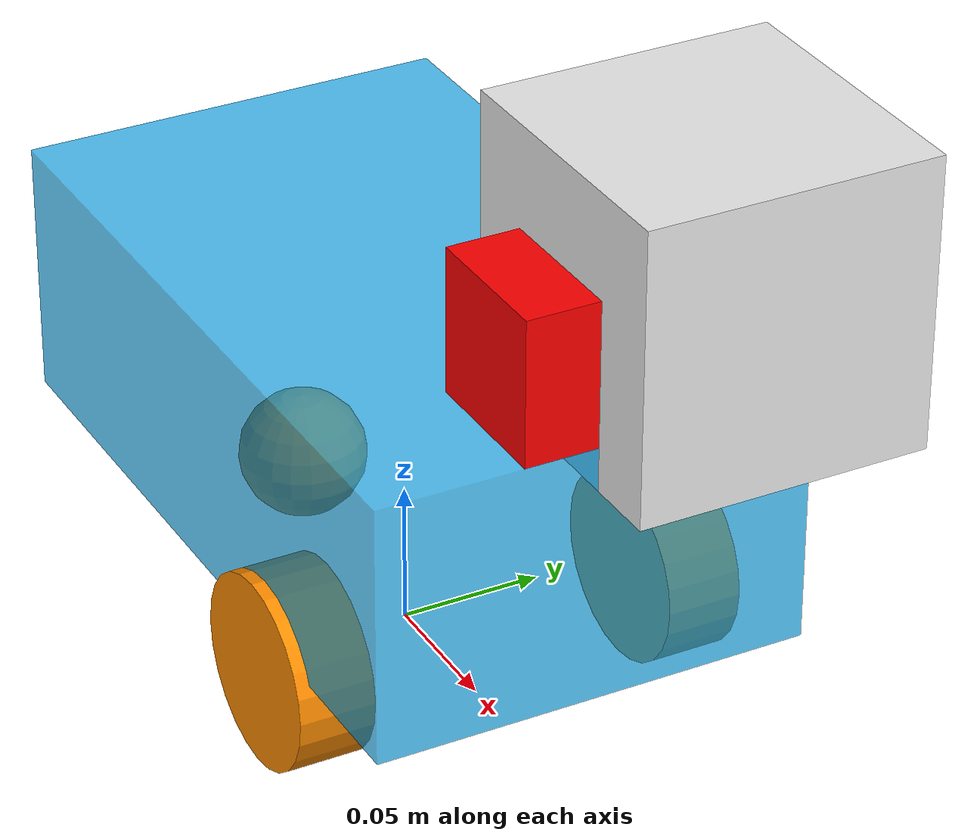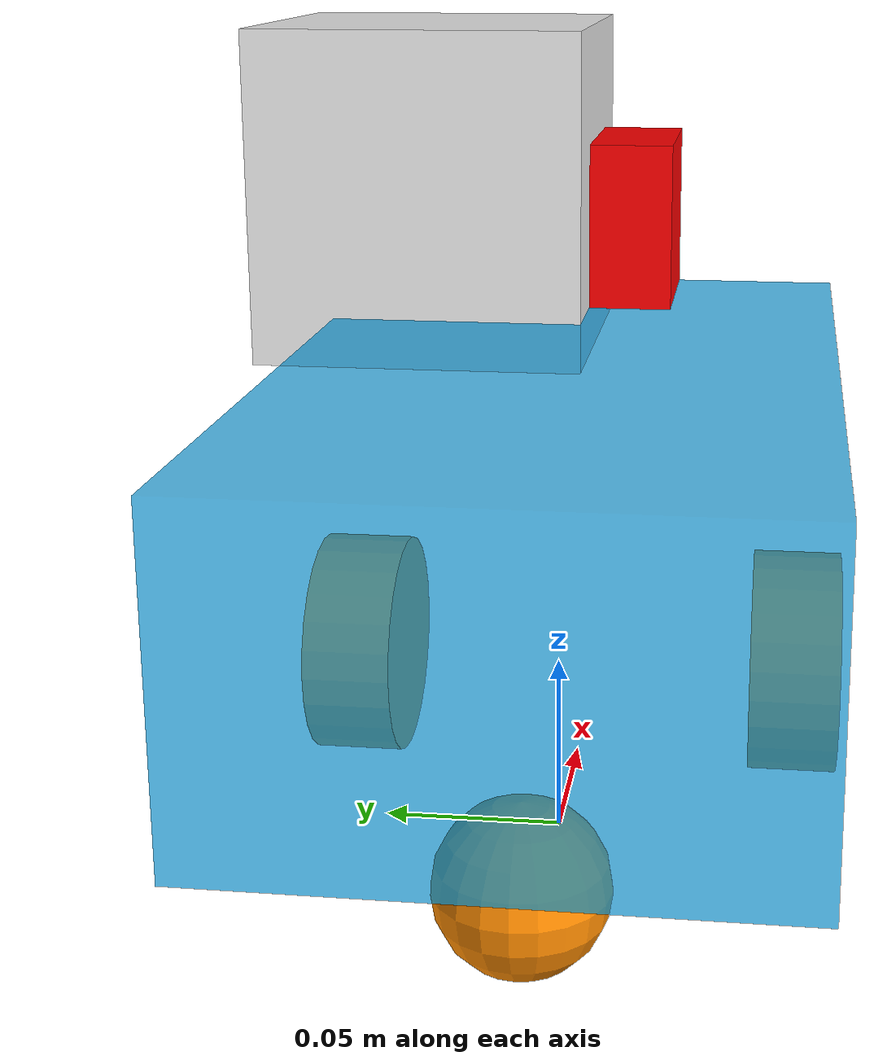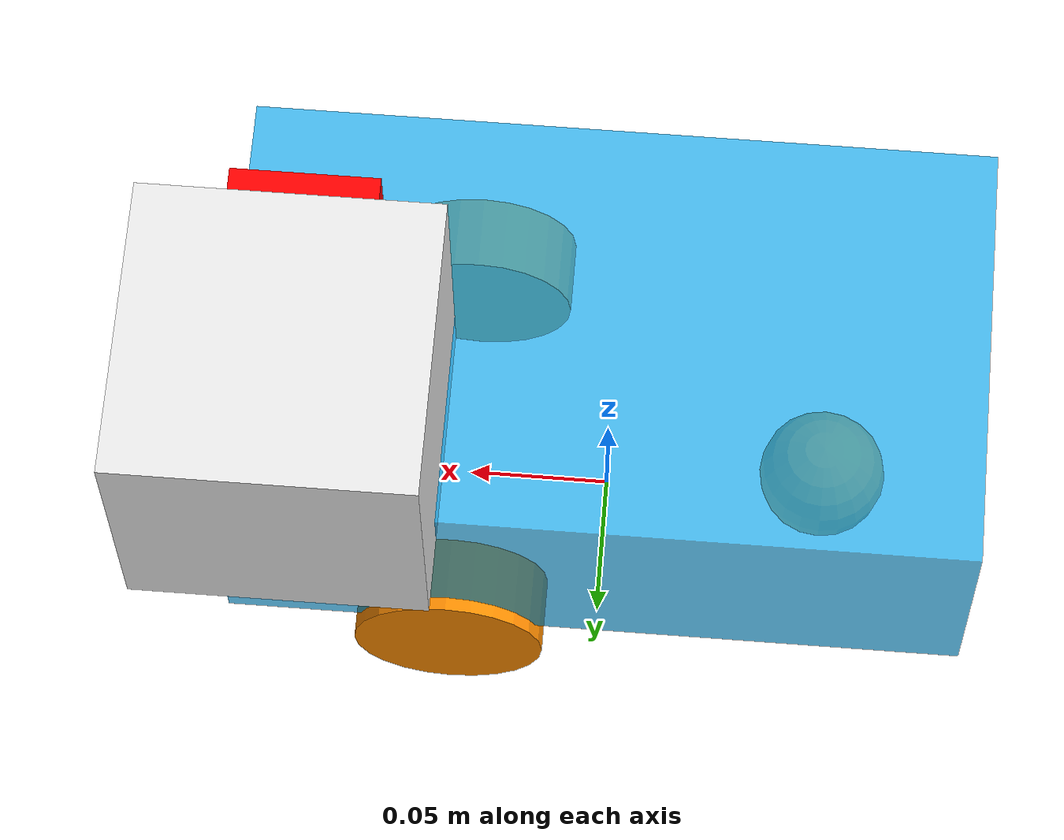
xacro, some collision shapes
<?xml version="1.0"?>
<robot name="c2" xmlns:xacro="http://ros.org/wiki/xacro">
	<!-- Import common colors -->
	<xacro:include filename="$(find c2_hw)/urdf/common.xacro" />

	<!-- Constants for robot dimensions -->
	<xacro:property name="base_size_x" value="0.255" /> <!-- in m-->
	<xacro:property name="base_size_y" value="0.149" />
	<xacro:property name="base_size_z" value="0.09" />
	<xacro:property name="wheel_width" value="0.026" />
	<xacro:property name="wheel_diameter" value="0.066" />
	<xacro:property name="wheel_mass" value="0.2" /> <!-- in kg-->
	<xacro:property name="wheel_axis_front" value="0.077" />
	<xacro:property name="wheel_axis_width" value="0.106" />
	<xacro:property name="chassis_high" value="0.045" />

	<!-- define macro -->
	<xacro:macro name="default_inertial" params="mass">
		<inertial>
			<mass value="${mass}" />
			<inertia ixx="1.0" ixy="0.0" ixz="0.0" iyy="1.0" iyz="0.0" izz="1.0" />
		</inertial>
	</xacro:macro>

	<xacro:macro name="cylinder_inertia" params="mass r h">
		<inertial>
			<mass value="${mass}" />
			<origin xyz="0 0 0" />
			<inertia  ixx="${mass*(3*r*r+h*h)/12}" ixy = "0" ixz = "0" iyy="${mass*(3*r*r+h*h)/12}" iyz = "0" izz="${mass*r*r/2}" />
		</inertial>
	</xacro:macro>

	<xacro:macro name="wheel" params="parent side reflect color">
		<link name="wheel_${side}_link">
			<visual>
				<origin xyz="0 0 0" rpy="0 0 0" />
				<geometry>
					<cylinder radius="${wheel_diameter/2}" length="${wheel_width}"/>
				</geometry>
				<material name="${color}" />
			</visual>
			<collision>
				<geometry>
					<cylinder radius="${wheel_diameter/2}" length="${wheel_width}" />
				</geometry>
			</collision>
			<xacro:cylinder_inertia  mass="${wheel_mass}" r="${wheel_diameter/2}" h="${wheel_width}" />
		</link>

		<joint name="wheel_${side}_joint" type="continuous">
			<parent link="${parent}"/>
			<child link="wheel_${side}_link"/>
			<origin xyz="${base_size_x/2-wheel_axis_front} ${reflect*(wheel_axis_width+wheel_width)/2} ${wheel_diameter/2-(base_size_z/2+chassis_high)}" rpy="${-1*PI/2} 0 0" />
			<axis xyz="0 0 1" />
			<limit effort="100" velocity="100"/>
			<safety_controller k_velocity="10" />
			<joint_properties damping="0.0" friction="0.0"/>
		</joint>

		<transmission name="wheel_${side}_trans">
			<type>transmission_interface/SimpleTransmission</type>
			<joint name="wheel_${side}_joint" >
				<hardwareInterface>hardware_interface/EffortJointInterface</hardwareInterface>
			</joint>
			<actuator name="wheel_${side}_motor">
				<mechanicalReduction>1</mechanicalReduction>
			</actuator>
		</transmission>
	</xacro:macro>

	<!-- The Base footprint -->
	<link name="base_footprint">
		<visual>
			<origin xyz="0 0 0" rpy="0 0 0" />
			<geometry>
				<box size="0.05 0.05 0.001" />
			</geometry>
			<material name="TransparentGreen" />
		</visual>
	</link>

	<joint name="base_footprint_joint" type="fixed">
		<origin xyz="0 0 ${chassis_high + base_size_z/2}" rpy="0 0 0" />
		<parent link="base_footprint"/>
		<child link="base_link" />
	</joint>

	<!-- The Base -->
	<link name="base_link">
		<visual>
			<origin xyz="0 0 0" rpy="0 0 0" />
			<geometry>
				<box size="${base_size_x} ${base_size_y} ${base_size_z}" />
			</geometry>
			<material name="TransparentSkyBlue" />
		</visual>
		<collision>
			<origin xyz="0 0 0" rpy="0 0 0" />
			<geometry>
				<box size="${base_size_x} ${base_size_y} ${base_size_z}" />
			</geometry>
		</collision>
		<xacro:default_inertial mass="10"/>
	</link>

	<!-- the driving wheels -->
	<xacro:wheel parent="base_link" side="left" reflect="1" color="Orange"/>
	<xacro:wheel parent="base_link" side="right" reflect="-1" color="Orange"/>

	<!-- the non-driving wheels -->
	<link name="wheel_tail_link">
		<visual>
			<origin xyz="0 0 0" rpy="0 0 0" />
			<geometry>
				<sphere radius="${chassis_high/2}" />
			</geometry>
			<material name="Orange" />
		</visual>
		<collision>
			<geometry>
				<sphere radius="${chassis_high/2}" />
			</geometry>
		</collision>
		<xacro:default_inertial mass="0.01"/>
	</link>

	<joint name="wheel_tail_joint" type="fixed">
		<parent link="base_link"/>
		<child link="wheel_tail_link"/>
		<origin xyz="${-1*(base_size_x/2 - 0.05)} 0 ${-1*(base_size_z+chassis_high)/2}" rpy="0 0 0" />
		<axis xyz="0 0 1" />
		<limit effort="100" velocity="100" lower="0.0" upper="314" />
	</joint>

	<!-- Camera -->
	<link name="camera_link">
		<visual>
			<origin xyz="0 0 0" rpy="0 0 0"/>
			<geometry>
				<box size="0.05 0.05 0.05"/>
			</geometry>
			<material name="red">
				<color rgba="1 0 0 1"/>
			</material>
		</visual>
		<collision>
			<origin xyz="0 0 0" rpy="0 0 0"/>
			<geometry>
				<box size="0.05 0.05 0.05"/>
			</geometry>
		</collision>
		<inertial>
			<mass value="1e-5" />
			<origin xyz="0 0 0" rpy="0 0 0"/>
			<inertia ixx="1e-6" ixy="0" ixz="0" iyy="1e-6" iyz="0" izz="1e-6" />
		</inertial>
	</link>

	<joint name="camera_joint" type="fixed">
		<axis xyz="0 1 0" />
		<origin xyz="${(base_size_x-0.05)/2} 0 ${(base_size_z + 0.05)/2 }" rpy="0 0 0"/>
		<parent link="base_link"/>
		<child link="camera_link"/>
	</joint>

	<!-- generate an optical frame http://www.ros.org/reps/rep-0103.html#suffix-frames
	so that ros and opencv can operate on the camera frame correctly -->
	<link name="camera_link_optical" />

	<joint name="camera_optical_joint" type="fixed">
		<!-- these values have to be these values otherwise the gazebo camera image
		won't be aligned properly with the frame it is supposedly originating from -->
		<origin xyz="0 0 0" rpy="${-pi/2} 0 ${-pi/2}"/>
		<parent link="camera_link"/>
		<child link="camera_link_optical"/>
	</joint>

	<!-- Hokuyo Laser -->
	<link name="hokuyo_link">
		<visual>
			<origin xyz="0 0 0" rpy="0 0 0"/>
			<geometry>
				<mesh filename="package://my_common/meshes/hokuyo.dae"/>
			</geometry>
		</visual>
		<collision>
			<origin xyz="0 0 0" rpy="0 0 0"/>
			<geometry>
				<box size="0.1 0.1 0.1"/>
			</geometry>
		</collision>
		<inertial>
			<mass value="1e-5" />
			<origin xyz="0 0 0" rpy="0 0 0"/>
			<inertia ixx="1e-6" ixy="0" ixz="0" iyy="1e-6" iyz="0" izz="1e-6" />
		</inertial>
	</link>

	<joint name="hokuyo_joint" type="fixed">
		<axis xyz="0 1 0" />
		<origin xyz="${(base_size_x-0.05)/2} 0.05 ${(base_size_z + 0.07)/2}" rpy="0 0 0"/>
		<parent link="base_link"/>
		<child link="hokuyo_link"/>
	</joint>

	<!-- Import all Gazebo-customization elements, including Gazebo colors -->
	<xacro:include filename="$(find c2_hw)/urdf/c2.gazebo" />

</robot>

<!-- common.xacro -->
<robot xmlns:xacro="http://ros.org/wiki/xacro">
	<xacro:property name="PI" value="3.1415926535897931"/>

	<!-- Put all the color definitions in a separate file -->
	<material name="Black">
		<color rgba="0.2 0.2 0.2 1.0"/>
	</material>

	<material name="White">
		<color rgba="1.0 1.0 1.0 1.0"/>
	</material>

	<material name="Red">
		<color rgba="0.8 0.0 0.0 1.0"/>
	</material>

	<material name="Green">
		<color rgba="0.0 0.8 0.0 1.0"/>
	</material>

	<material name="Blue">
		<color rgba="0.0 0.0 0.8 1.0"/>
	</material>

	<material name="Orange">
		<color rgba="1.0  0.55 0.0 1.0"/>
	</material>

	<material name="Yellow">
		<color rgba="1.0 1.0 0.0 1.0"/>
	</material>

	<material name="Grey">
		<color rgba="0.7 0.7 0.7 1.0"/>
	</material>

	<material name="DarkGrey">
		<color rgba="0.3 0.3 0.3 1.0"/>
	</material>

	<material name="OffWhite">
		<color rgba="0.8 0.8 0.8 1.0"/>
	</material>

	<material name="TransparentBlack">
		<color rgba="0.2 0.2 0.2 0.8"/>
	</material>

	<material name="TransparentSkyBlue">
		<color rgba="0.01568 0.6588 0.949 0.7"/>
	</material>

	<material name="TransparentGreen">
		<color rgba="0.0 0.8 0.0 0.5"/>
	</material>

</robot>
